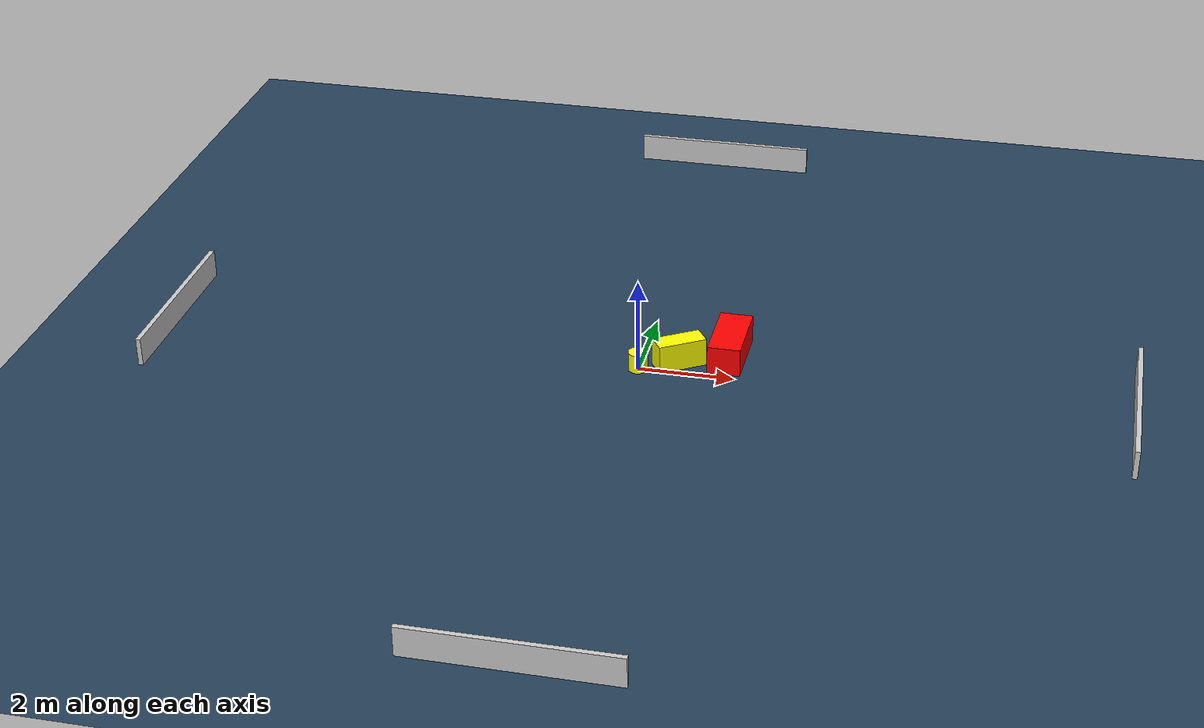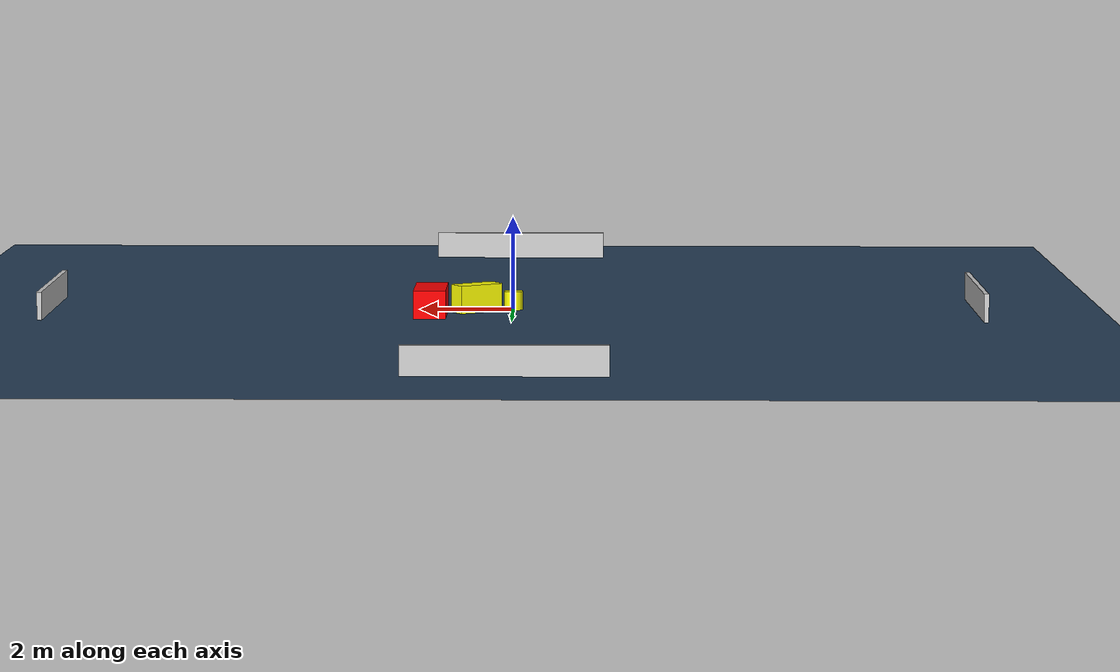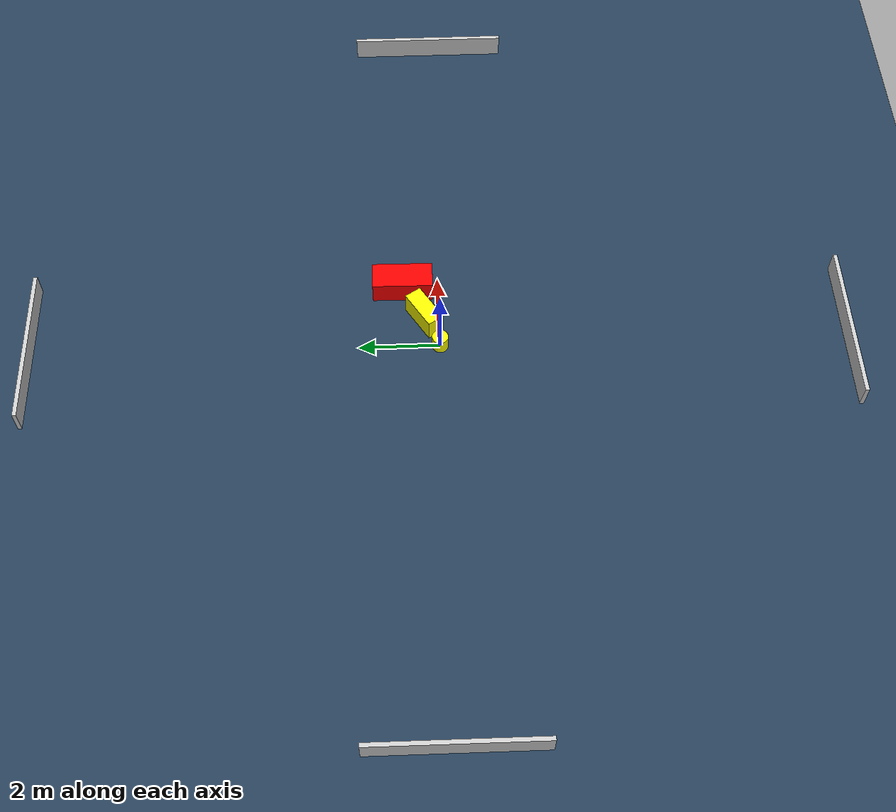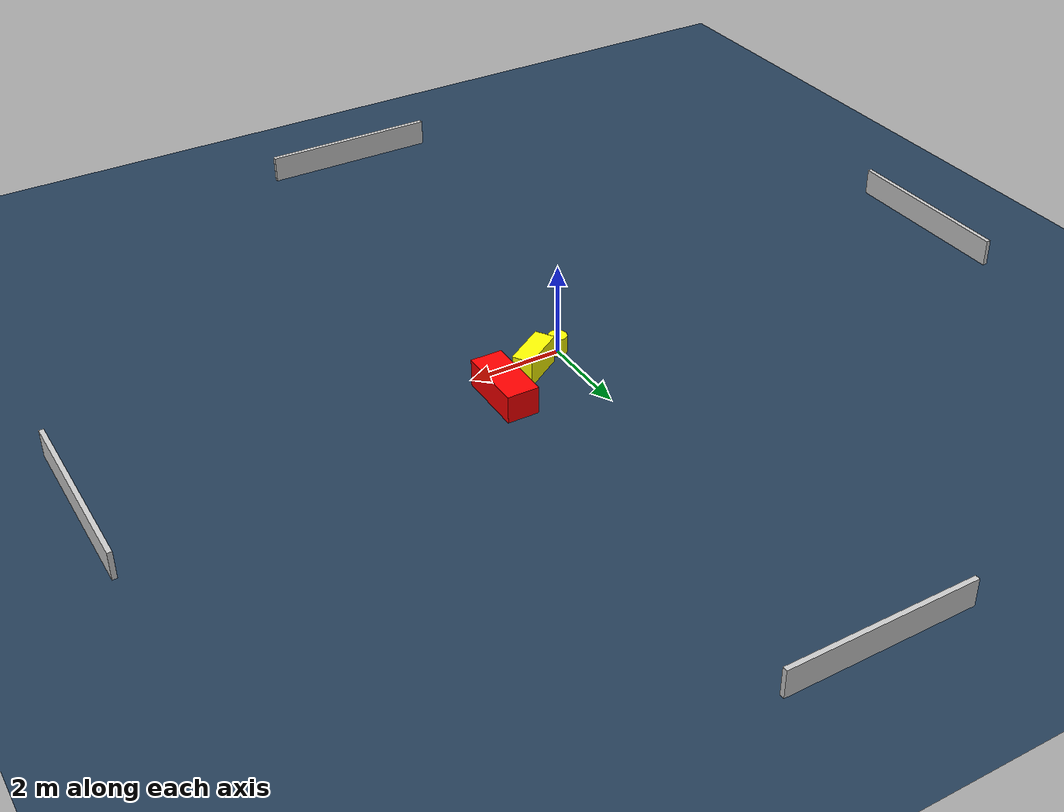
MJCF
<?xml version="1.0" ?>
<mujoco model="generated_environment">
  <option timestep="0.01" integrator="RK4" cone="elliptic"/>
  <default>
    <geom density="1"/>
  </default>
  <asset>
    <texture builtin="gradient" height="3072" name="skybox" rgb1="0.3 0.5 0.7" rgb2="0 0 0" type="skybox" width="512"/>
    <texture builtin="checker" height="300" name="groundplane" rgb1="0.2 0.3 0.4" rgb2="0.1 0.2 0.3" type="2d" width="300"/>
    <material name="groundplane" reflectance="0.2" texrepeat="5 5" texture="groundplane"/>
  </asset>
  <worldbody>
    <light dir="0 0 -1" directional="true" pos="0 0 1.5"/>
    <geom condim="3" friction="0.5 0.005 0.001" material="groundplane" name="floor" pos="0 0 0" size="0 0 0.05" type="plane"/>
    <body name="walls">
      <geom name="wall_1" condim="4" pos="-10.0 0.0 0.3" rgba="0.800000011920929 0.800000011920929 0.800000011920929 1.0" size="0.05 2.0 0.3" type="box"/>
      <geom name="wall_2" condim="4" pos="10.0 0.0 0.3" rgba="0.800000011920929 0.800000011920929 0.800000011920929 1.0" size="0.05 2.0 0.3" type="box"/>
      <geom name="wall_3" condim="4" pos="0.0 -10.0 0.3" rgba="0.800000011920929 0.800000011920929 0.800000011920929 1.0" size="2.0 0.05 0.3" type="box"/>
      <geom name="wall_4" condim="4" pos="0.0 10.0 0.3" rgba="0.800000011920929 0.800000011920929 0.800000011920929 1.0" size="2.0 0.05 0.3" type="box"/>
    </body>
    <body name="robot">
      <joint name="joint_x" type="slide" pos="0 0 0" axis="1 0 0"/>
      <joint name="joint_y" type="slide" pos="0 0 0" axis="0 1 0"/>
      <geom name="robot" type="cylinder" pos="0.0 0.0 0.2" size="0.2 0.2 0.0" mass="5.0" friction="1.0 0.005 0.0001" condim="4" rgba="1.0 1.0 0.0 1.0"/>
    </body>
    <body name="obstacle_1_movable">
      <geom name="obstacle_1_movable" condim="4" pos="0.7845996736267746 0.36399609315403786 0.3" euler="0 0 212.54478055547474" friction="0.0 0.005 0.001" rgba="1.0 1.0 0.0 1.0" size="0.5148099085414433 0.2158470124602534 0.3" type="box" mass="0.1"/>
      <joint type="free"/>
    </body>
    <body name="obstacle_2_static">
      <geom name="obstacle_2_static" condim="4" pos="1.7508224876890728 0.8831891828883944 0.3" euler="0 0 179.48129324125856" friction="0.0 0.005 0.001" rgba="1.0 0.0 0.0 1.0" size="0.34291291231651677 0.7452447104631079 0.3" type="box"/>
    </body>
  </worldbody>
  <actuator>
    <motor name="actuator_x" joint="joint_x" gear="1" ctrlrange="-1 1"/>
    <motor name="actuator_y" joint="joint_y" gear="1" ctrlrange="-1 1"/>
  </actuator>
</mujoco>
